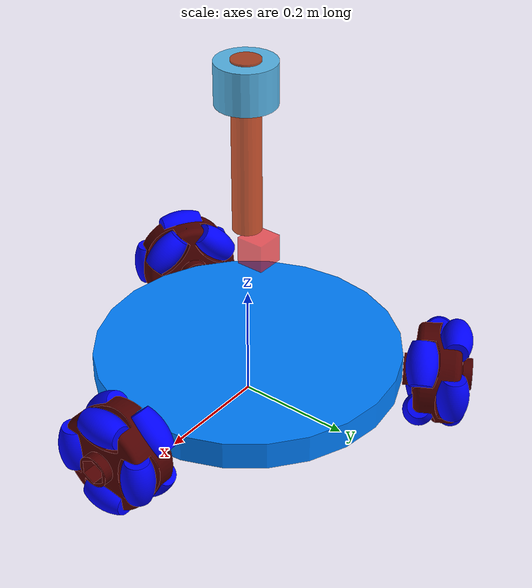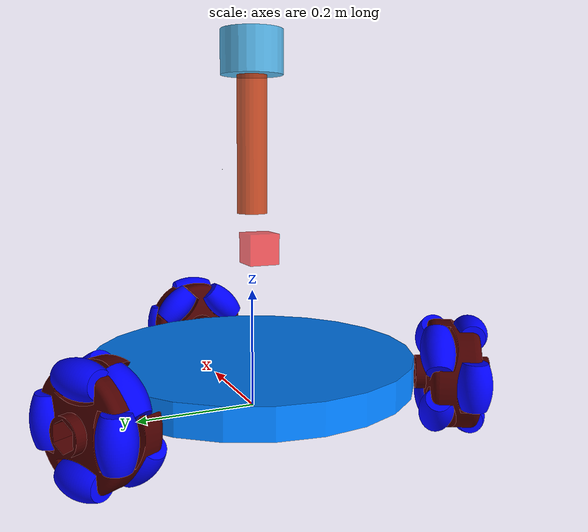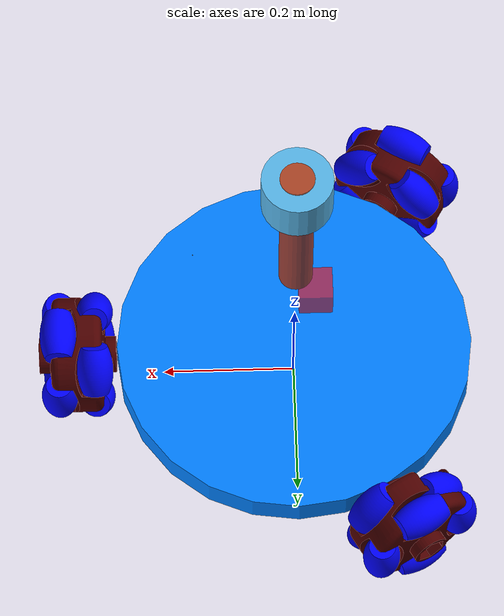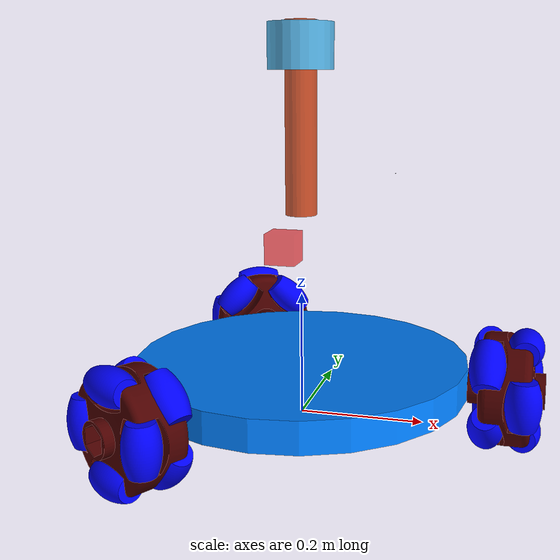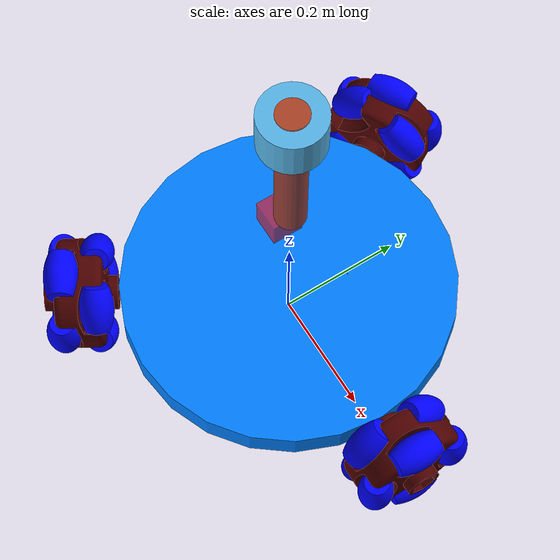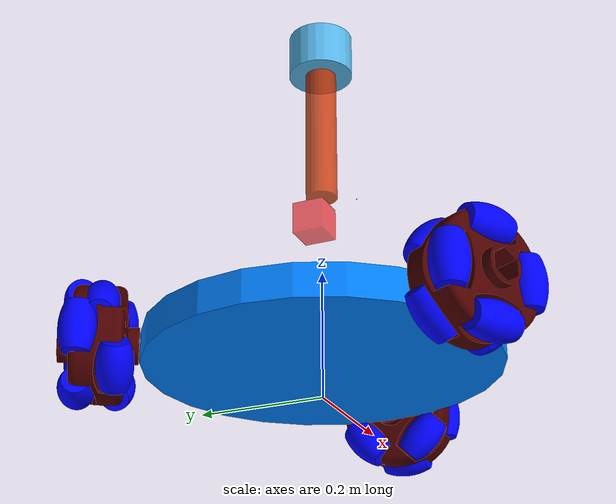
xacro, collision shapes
<?xml version='1.0'?>

<robot name="omni_robot" xmlns:xacro="http://www.ros.org/wiki/xacro">

  	<xacro:include filename="$(find omni_gazebo)/urdf/omni_robot.gazebo" />
	<xacro:property name="scale" value="0.01" />
    <xacro:arg name="gpu" default="false"/>
    <xacro:property name="gpu" value="$(arg gpu)" />
    <xacro:arg name="organize_cloud" default="true"/>
    <xacro:property name="organize_cloud" value="$(arg organize_cloud)" />
	<xacro:property name="base_z_size" value="0.410000" />
    <xacro:include filename="$(find omni_gazebo)/urdf/sensors/inertial.xacro" />
    <xacro:include filename="$(find omni_gazebo)/urdf/sensors/laser_support.xacro" />
    <xacro:include filename="$(find velodyne_description)/urdf/VLP-16.urdf.xacro"/>
    <xacro:VLP-16 parent="support" name="velodyne" topic="/velodyne_points" organize_cloud="${organize_cloud}" hz="10" samples="400" gpu="${gpu}">
          <origin xyz="0 0 ${support_length/4}" rpy="0 0 0" />
    </xacro:VLP-16>

    <xacro:include filename="$(find omni_gazebo)/urdf/sensors/imu.xacro"/>
    <xacro:imu sensor_name="imu" parent_link="base_link">
    <origin rpy="0 0 0" xyz="-0.03 0 ${base_z_size/2}"/>
    </xacro:imu>

  	<link name="base_footprint"></link>

	<joint name="robot_footprint_joint" type="fixed">
		<origin xyz="0 0 0.07" rpy="0 0 0" />
		<parent link="base_footprint" />
		<child link="base_link" />
	</joint>

	<!-- Base Link -->
	<link name="base_link">
		<visual>
			<origin xyz="0 0 0" rpy="0 0 0" />
			<geometry>
				<cylinder radius="0.27" length="0.05"/>
				<!--long,wide,tall-->
			</geometry>

			<material name="blue">
				<color rgba="0 0.5 1 1"/>
			</material>
		</visual>
		<!-- Base collision -->
		<collision>
			<origin xyz="0 0 0" rpy="0 0 0" />
			<geometry>
				<cylinder radius="0.27" length="0.05"/>
				<!--long,wide,tall-->
			</geometry>
		</collision>

		<inertial>
			<mass value="${10.0*scale}"/>
			<inertia ixx="0.5" ixy="0.0" ixz="0.0"
					iyy="0.1391" iyz="0.0" izz="1.6125"/>
		</inertial>

		<visual name="left_bottom_cylinder">
			<origin xyz="0.15 -0.15 0.15" rpy="0 0 0" />
			<geometry>
				<box size="0.02 0.02 0.25" />
			</geometry>
			<material name="white">
				<color rgba="0 0 0 1"/>
			</material>
		</visual>
		<!-- left bottom cylinder collision -->

		<!-- right_bottom cylinder -->
		<visual name="right_bottom_cylinder">
			<origin xyz="0.15 0.15 0.15" rpy="0 0 0" />
			<geometry>
				<box size="0.02 0.02 0.25" />
			</geometry>
			<material name="white"/>
		</visual>

		<!-- between_top_cylinder -->
		<visual name="between_top_cylinder">
			<origin xyz="-0.15 0 0.15" rpy="0 0 0" />
			<geometry>
				<box size="0.02 0.02 0.25" />
			</geometry>
			<material name="white"/>
		</visual>

		<!-- hold_box1 -->
		<visual name="hold_box1">
			<origin xyz="0 0 0.26" rpy="0 0 0" />
			<geometry>
				<cylinder radius="0.25" length="0.05" />
			</geometry>
			<material name="blue"/>
		</visual>

	</link>

	<!-- Orbbec Astra RGBD Camera -->
	<joint name="astra_joint" type="fixed">
		<axis xyz="0 0 0" />
		<origin xyz="0.15 0 0.33" rpy="0 0 0"/>
		<parent link="base_link"/>
		<child link="camera_link"/>
	</joint>

	<link name="camera_link">
		<collision>
			<origin xyz="0 0 0" rpy="0 0 0"/>
			<geometry>
				<box size="0.001 0.001 0.001"/>
			</geometry>
		</collision>

		<visual>
			<origin xyz="-0.01 0 -0.03" rpy="1.5707 0 1.5707"/>
			<geometry>
				<mesh filename="package://omni_gazebo/meshes/astra.dae" scale="0.001 0.001 0.001" />
			</geometry>
		</visual>

		<inertial>
			<mass value="${1e-5*scale}" />
			<origin xyz="0 0 0" rpy="0 0 0"/>
			<inertia ixx="0" ixy="0" ixz="0" iyy="0" iyz="0" izz="0" />
		</inertial>
	</link>

	<joint name="camera_optical_joint" type="fixed">
		<origin xyz="0 0 0" rpy="0 0 0"/>
		<parent link="camera_link"/>
		<child link="camera_rgb_frame"/>
	</joint>

	<link name="camera_rgb_frame">
	</link>

	<joint name="camera_depth_joint" type="fixed">
		<origin xyz="0 0 0" rpy="-1.5707 0 -1.5707"/>
		<parent link="camera_link"/>
		<child link="camera_depth_frame"/>
	</joint>

	<link name="camera_depth_frame">
	</link>

	<!-- rplidar Laser -->

	<!-- IMU -->

	<!-- top_wheel -->
	<joint name="joint_top_wheel" type="fixed">
		<parent link="base_link"/>
		<child link="top_wheel"/>
		<origin xyz="0.33 0 0" rpy="1.570796 0 1.570796" />
		<axis xyz="0 0 1" />
		<joint_properties damping="0.0" friction="0.0"/>
	</joint>

	<transmission name="top_wheel_trans" type="SimpleTransmission">
		<type>transmission_interface/SimpleTransmission</type>
		<actuator name="top_wheel_motor">
			<mechanicalReduction>1</mechanicalReduction>
		</actuator>
		<joint name="joint_top_wheel">
			<hardwareInterface>hardware_interface/VelocityJointInterface</hardwareInterface>
		</joint>
	</transmission>

	<link name="top_wheel">
		<visual>
			<origin xyz="0 0 0" rpy="0 0 0.0" />
			<geometry>
				<mesh filename="package://omni_gazebo/meshes/rim.stl" scale="5 5 5"/>
			</geometry>
			<material name="left_rim_material">
				<color rgba="0.3 0 0 1"/>
			</material>
		</visual>

		<!-- top_wheel collision -->
		<collision>
			<geometry>
				<mesh filename="package://omni_gazebo/meshes/rim.stl" scale="5 5 5"/>
			</geometry>
		</collision>

		<inertial>
			<mass value="${5*scale}"/>
			<inertia ixx="0.070416667" ixy="0" ixz="0"
					iyy="0.0325" iyz="0" izz="0.070416667"/>
		</inertial>
	</link>

	<!-- right_bottom Wheel -->
	<joint name="joint_right_bottom_wheel" type="fixed">
		<parent link="base_link"/>
		<child link="right_bottom_wheel"/>
		<origin xyz="-0.165 0.285788 0" rpy="1.570795 0 -2.61799" />
		<axis xyz="0 0 1" />
		<joint_properties damping="0.0" friction="0.0"/>
	</joint>

	<transmission name="right_bottom_wheel_trans" type="SimpleTransmission">
		<type>transmission_interface/SimpleTransmission</type>
		<actuator name="right_bottom_wheel_motor">
			<mechanicalReduction>1</mechanicalReduction>
		</actuator>
		<joint name="joint_right_bottom_wheel">
			<hardwareInterface>hardware_interface/VelocityJointInterface</hardwareInterface>
		</joint>
	</transmission>

	<link name="right_bottom_wheel">
		<visual>
		<origin xyz="0 0 0" rpy="0 0 0.0" />
		<geometry>
			<mesh filename="package://omni_gazebo/meshes/rim.stl" scale="5 5 5"/>
		</geometry>
		<material name="left_rim_material">
			<color rgba="0.3 0 0 1"/>
		</material>
		</visual>
		<!-- right_bottom_wheel collision -->
		<collision>
			<geometry>
				<mesh filename="package://omni_gazebo/meshes/rim.stl" scale="5 5 5"/>
			</geometry>
		</collision>
		<inertial>
			<mass value="${5*scale}"/>
			<inertia ixx="0.070416667" ixy="0" ixz="0"
					iyy="0.0325" iyz="0" izz="0.070416667"/>
		</inertial>
	</link>

	<!-- right left_bottom Wheel -->
	<joint name="joint_left_bottom_wheel" type="fixed">
		<parent link="base_link"/>
		<child link="left_bottom_wheel"/>
		<origin xyz="-0.165 -0.285788 0" rpy="1.570795 0 -0.52360" />
		<axis xyz="0 0 1" />
		<joint_properties damping="0.0" friction="0.0"/>
	</joint>

	<transmission name="left_bottom_wheel_trans" type="SimpleTransmission">
		<type>transmission_interface/SimpleTransmission</type>
		<actuator name="top_wheel_motor">
			<mechanicalReduction>1</mechanicalReduction>
		</actuator>
		<joint name="joint_left_bottom_wheel">
			<hardwareInterface>hardware_interface/VelocityJointInterface</hardwareInterface>
		</joint>
	</transmission>

	<link name="left_bottom_wheel">
	<visual>
		<origin xyz="0 0 0" rpy="0 0 0.0" />
		<geometry>
			<mesh filename="package://omni_gazebo/meshes/rim.stl" scale="5 5 5"/>
		</geometry>
			<material name="left_rim_material">
				<color rgba="0.3 0 0 1"/>
			</material>
		</visual>

		<!-- left_bottom wheel collision -->
		<collision>
			<geometry>
				<mesh filename="package://omni_gazebo/meshes/rim.stl" scale="5 5 5"/>
			</geometry>
		</collision>
		<inertial>
			<mass value="${5*scale}"/>
			<inertia ixx="0.070416667" ixy="0" ixz="0"
					iyy="0.0325" iyz="0" izz="0.070416667"/>
		</inertial>
	</link>

	<!-- Roller bottem left wheel -->
	<!-- Roller bottem left wheel -->
	<link name="bottem_left_roller_e_link">
		<visual>
			<origin xyz="0 0 0" rpy="0 0 0"/>
			<geometry>
				<mesh filename="package://omni_gazebo/meshes/roller.stl" scale="5 5 5"/>
			</geometry>
			<material name="bottem_left_roller_e_material">
				<color rgba="0.0 0.0 1.0 1"/>
			</material>
		</visual>
		<inertial>
			<mass value="${0.00179*scale}"/>
			<inertia
				ixx="0.000005"
				ixy="0"
				ixz="0"
				iyy="0.000005"
				iyz="0"
				izz="0.000003"
			/>
		</inertial>

		<collision>
			<geometry>
				<mesh filename="package://omni_gazebo/meshes/roller.stl" scale="5 5 5"/>
			</geometry>
		</collision>
	</link>

	<joint
		name="bottem_left_roller_e_joint"
		type="fixed"
	>

		<parent link="left_bottom_wheel"/>
		<child link="bottem_left_roller_e_link"/>
		<axis xyz="0 0 1"/>
		<origin
			xyz="0.06775 0 0.0275"
			rpy="-1.570796326794896 0 0"
		/>

	</joint>
	<link name="bottem_left_roller_ne_link">

		<inertial>

			<mass value="${0.00179*scale}"/>
			<inertia
				ixx="0.000005"
				ixy="0"
				ixz="0"
				iyy="0.000005"
				iyz="0"
				izz="0.000003"
			/>

		</inertial>
		<visual>

			<geometry>

				<mesh filename="package://omni_gazebo/meshes/roller.stl" scale="5 5 5"/>

			</geometry>
			<material name="bottem_left_roller_e_material">

				<color rgba="0.0 0.0 1.0 1"/>

			</material>

		</visual>
		<collision>

			<geometry>

				<mesh filename="package://omni_gazebo/meshes/roller.stl" scale="5 5 5"/>

			</geometry>

		</collision>

	</link>
	<joint
		name="bottem_left_roller_ne_joint"
		type="fixed"
	>

		<parent link="left_bottom_wheel"/>
		<child link="bottem_left_roller_ne_link"/>
		<axis xyz="0 0 1"/>
		<origin
			xyz="0.047906484 0.047906484 -0.0275"
			rpy="-1.570796326794896 0 0.7853981633974483"
		/>

	</joint>
	<link name="bottem_left_roller_n_link">

		<inertial>

			<mass value="${0.00179*scale}"/>
			<inertia
				ixx="0.000005"
				ixy="0"
				ixz="0"
				iyy="0.000005"
				iyz="0"
				izz="0.000003"
			/>

		</inertial>
		<visual>

			<geometry>

				<mesh filename="package://omni_gazebo/meshes/roller.stl" scale="5 5 5"/>

			</geometry>
			<material name="bottem_left_roller_n_material">

				<color rgba="0.0 0.0 1.0 1"/>

			</material>

		</visual>
		<collision>

			<geometry>

				<mesh filename="package://omni_gazebo/meshes/roller.stl" scale="5 5 5"/>

			</geometry>

		</collision>

	</link>
	<joint name="bottem_left_roller_n_joint" type="fixed">
		<parent link="left_bottom_wheel"/>
		<child link="bottem_left_roller_n_link"/>
		<axis xyz="0 0 1"/>
		<origin
			xyz="0 0.06775 0.0275"
			rpy="-1.570796326794896 0 1.570796326794896"
		/>
	</joint>

	<link name="bottem_left_roller_nw_link">
		<inertial>
			<mass value="${0.00179*scale}"/>
			<inertia
				ixx="0.000005"
				ixy="0"
				ixz="0"
				iyy="0.000005"
				iyz="0"
				izz="0.000003"
			/>
		</inertial>
		<visual>
			<geometry>
				<mesh filename="package://omni_gazebo/meshes/roller.stl" scale="5 5 5"/>
			</geometry>
			<material name="bottem_left_roller_nw_material">
				<color rgba="0.0 0.0 1.0 1"/>
			</material>
		</visual>
		<collision>
			<geometry>
				<mesh filename="package://omni_gazebo/meshes/roller.stl" scale="5 5 5"/>
			</geometry>
		</collision>
	</link>

	<joint name="bottem_left_roller_nw_joint" type="fixed">
		<parent link="left_bottom_wheel"/>
		<child link="bottem_left_roller_nw_link"/>
		<axis xyz="0 0 1"/>
		<origin
			xyz="-0.047906484 0.047906484 -0.0275"
			rpy="-1.570796326794896 0 2.356194490192345"
		/>
	</joint>

	<link name="bottem_left_roller_w_link">
		<inertial>
			<mass value="${0.00179*scale}"/>
			<inertia
				ixx="0.000005"
				ixy="0"
				ixz="0"
				iyy="0.000005"
				iyz="0"
				izz="0.000003"
			/>
		</inertial>
		<visual>
			<geometry>
				<mesh filename="package://omni_gazebo/meshes/roller.stl" scale="5 5 5"/>
			</geometry>
			<material name="bottem_left_roller_w_material">
				<color rgba="0.0 0.0 1.0 1"/>
			</material>
		</visual>
		<collision>
			<geometry>
				<mesh filename="package://omni_gazebo/meshes/roller.stl" scale="5 5 5"/>
			</geometry>
		</collision>
	</link>

	<joint name="bottem_left_roller_w_joint" type="fixed">
		<parent link="left_bottom_wheel"/>
		<child link="bottem_left_roller_w_link"/>
		<axis xyz="0 0 1"/>
		<origin
			xyz="-0.06775 0 0.0275"
			rpy="-1.570796326794896 0 3.141592653589793"
		/>
	</joint>

	<link name="bottem_left_roller_sw_link">
		<inertial>
			<mass value="${0.00179*scale}"/>
			<inertia
				ixx="0.000005"
				ixy="0"
				ixz="0"
				iyy="0.000005"
				iyz="0"
				izz="0.000003"
			/>
		</inertial>
		<visual>
			<geometry>
				<mesh filename="package://omni_gazebo/meshes/roller.stl" scale="5 5 5"/>
			</geometry>
			<material name="bottem_left_roller_sw_material">
				<color rgba="0.0 0.0 1.0 1"/>
			</material>
		</visual>
		<collision>
			<geometry>
				<mesh filename="package://omni_gazebo/meshes/roller.stl" scale="5 5 5"/>
			</geometry>
		</collision>
	</link>

	<joint name="bottem_left_roller_sw_joint" type="fixed">
		<parent link="left_bottom_wheel"/>
		<child link="bottem_left_roller_sw_link"/>
		<axis xyz="0 0 1"/>
		<origin
			xyz="-0.047906484 -0.047906484 -0.0275"
			rpy="-1.570796326794896 0 -2.356194490192345"
		/>
	</joint>

	<link name="bottem_left_roller_s_link">
		<inertial>
			<mass value="${0.00179*scale}"/>
			<inertia
				ixx="0.000005"
				ixy="0"
				ixz="0"
				iyy="0.000005"
				iyz="0"
				izz="0.000003"
			/>
		</inertial>
		<visual>
			<geometry>
				<mesh filename="package://omni_gazebo/meshes/roller.stl" scale="5 5 5"/>
			</geometry>
			<material name="bottem_left_roller_s_material">
				<color rgba="0.0 0.0 1.0 1"/>
			</material>
		</visual>
		<collision>
			<geometry>
				<mesh filename="package://omni_gazebo/meshes/roller.stl" scale="5 5 5"/>
			</geometry>
		</collision>
	</link>

	<joint name="bottem_left_roller_s_joint" type="fixed">
		<parent link="left_bottom_wheel"/>
		<child link="bottem_left_roller_s_link"/>
		<axis xyz="0 0 1"/>
		<origin
			xyz="0 -0.06775 0.0275"
			rpy="-1.570796326794896 0 -1.570796326794896"
		/>
	</joint>

	<link name="bottem_left_roller_se_link">
		<inertial>
			<mass value="${0.00179*scale}"/>
			<inertia
				ixx="0.000005"
				ixy="0"
				ixz="0"
				iyy="0.000005"
				iyz="0"
				izz="0.000003"
			/>
		</inertial>
		<visual>
			<geometry>
				<mesh filename="package://omni_gazebo/meshes/roller.stl" scale="5 5 5"/>
			</geometry>
			<material name="bottem_left_roller_se_material">
				<color rgba="0.0 0.0 1.0 1"/>
			</material>
		</visual>
		<collision>
			<geometry>
				<mesh filename="package://omni_gazebo/meshes/roller.stl" scale="5 5 5"/>
			</geometry>
		</collision>
	</link>

	<joint name="bottem_left_roller_se_joint" type="fixed">
		<parent link="left_bottom_wheel"/>
		<child link="bottem_left_roller_se_link"/>
		<axis xyz="0 0 1"/>
		<origin
			xyz="0.047906484 -0.047906484 -0.0275"
			rpy="-1.570796326794896 0 -0.7853981633974483"
		/>
	</joint>

	<link name="bottem_right_roller_e_link">
		<visual>
			<origin xyz="0 0 0"	rpy="0 0 0"/>
			<geometry>
				<mesh filename="package://omni_gazebo/meshes/roller.stl" scale="5 5 5"/>
			</geometry>
			<material name="bottem_right_roller_e_material">
				<color rgba="0.0 0.0 1.0 1"/>
			</material>
		</visual>
		<inertial>
			<mass value="${0.00179*scale}"/>
			<inertia
				ixx="0.000005"
				ixy="0"
				ixz="0"
				iyy="0.000005"
				iyz="0"
				izz="0.000003"
			/>
		</inertial>
		<collision>
			<geometry>
				<mesh filename="package://omni_gazebo/meshes/roller.stl" scale="5 5 5"/>
			</geometry>
		</collision>
	</link>
	<joint name="bottem_right_roller_e_joint" type="fixed">
		<parent link="right_bottom_wheel"/>
		<child link="bottem_right_roller_e_link"/>
		<axis xyz="0 0 1"/>
		<origin
			xyz="0.06775 0 0.0275"
			rpy="-1.570796326794896 0 0"
		/>
	</joint>

	<link name="bottem_right_roller_ne_link">
		<inertial>
			<mass value="${0.00179*scale}"/>
			<inertia
				ixx="0.000005"
				ixy="0"
				ixz="0"
				iyy="0.000005"
				iyz="0"
				izz="0.000003"
			/>
		</inertial>
		<visual>
			<geometry>
				<mesh filename="package://omni_gazebo/meshes/roller.stl" scale="5 5 5"/>
			</geometry>
			<material name="bottem_right_roller_e_material">
				<color rgba="0.0 0.0 1.0 1"/>
			</material>
		</visual>
		<collision>
			<geometry>
				<mesh filename="package://omni_gazebo/meshes/roller.stl" scale="5 5 5"/>
			</geometry>
		</collision>
	</link>

	<joint name="bottem_right_roller_ne_joint" type="fixed">
		<parent link="right_bottom_wheel"/>
		<child link="bottem_right_roller_ne_link"/>
		<axis xyz="0 0 1"/>
		<origin
			xyz="0.047906484 0.047906484 -0.00275"
			rpy="-1.570796326794896 0 0.7853981633974483"
		/>
	</joint>

	<link name="bottem_right_roller_n_link">
		<inertial>
			<mass value="${0.00179*scale}"/>
			<inertia
				ixx="0.000005"
				ixy="0"
				ixz="0"
				iyy="0.000005"
				iyz="0"
				izz="0.000003"
			/>
		</inertial>
		<visual>
			<geometry>
				<mesh filename="package://omni_gazebo/meshes/roller.stl" scale="5 5 5"/>
			</geometry>
			<material name="bottem_right_roller_n_material">
				<color rgba="0.0 0.0 1.0 1"/>
			</material>
		</visual>
		<collision>
			<geometry>
				<mesh filename="package://omni_gazebo/meshes/roller.stl" scale="5 5 5"/>
			</geometry>
		</collision>
	</link>

	<joint name="bottem_right_roller_n_joint" type="fixed">
		<parent link="right_bottom_wheel"/>
		<child link="bottem_right_roller_n_link"/>
		<axis xyz="0 0 1"/>
		<origin
			xyz="0 0.06775 0.0275"
			rpy="-1.570796326794896 0 1.570796326794896"
		/>
	</joint>

	<link name="bottem_right_roller_nw_link">
		<inertial>
			<mass value="${0.00179*scale}"/>
			<inertia
				ixx="0.000005"
				ixy="0"
				ixz="0"
				iyy="0.000005"
				iyz="0"
				izz="0.000003"
			/>
		</inertial>
		<visual>
			<geometry>
				<mesh filename="package://omni_gazebo/meshes/roller.stl" scale="5 5 5"/>
			</geometry>
			<material name="bottem_right_roller_nw_material">
				<color rgba="0.0 0.0 1.0 1"/>
			</material>
		</visual>
		<collision>
			<geometry>
				<mesh filename="package://omni_gazebo/meshes/roller.stl" scale="5 5 5"/>
			</geometry>
		</collision>
	</link>

	<joint name="bottem_right_roller_nw_joint" type="fixed">
		<parent link="right_bottom_wheel"/>
		<child link="bottem_right_roller_nw_link"/>
		<axis xyz="0 0 1"/>
		<origin
			xyz="-0.047906484 0.047906484 -0.0275"
			rpy="-1.570796326794896 0 2.356194490192345"
		/>
	</joint>

	<link name="bottem_right_roller_w_link">
		<inertial>
			<mass value="${0.00179*scale}"/>
			<inertia
				ixx="0.000005"
				ixy="0"
				ixz="0"
				iyy="0.000005"
				iyz="0"
				izz="0.000003"
			/>
		</inertial>
		<visual>
			<geometry>
				<mesh filename="package://omni_gazebo/meshes/roller.stl" scale="5 5 5"/>
			</geometry>
			<material name="bottem_right_roller_w_material">
				<color rgba="0.0 0.0 1.0 1"/>
			</material>
		</visual>
		<collision>
			<geometry>
				<mesh filename="package://omni_gazebo/meshes/roller.stl" scale="5 5 5"/>
			</geometry>
		</collision>
	</link>

	<joint name="bottem_right_roller_w_joint" type="fixed">
		<parent link="right_bottom_wheel"/>
		<child link="bottem_right_roller_w_link"/>
		<axis xyz="0 0 1"/>
		<origin
			xyz="-0.06775 0 0.0275"
			rpy="-1.570796326794896 0 3.141592653589793"
		/>
	</joint>

	<link name="bottem_right_roller_sw_link">
		<inertial>
			<mass value="${0.00179*scale}"/>
			<inertia
				ixx="0.000005"
				ixy="0"
				ixz="0"
				iyy="0.000005"
				iyz="0"
				izz="0.000003"
			/>
		</inertial>
		<visual>
			<geometry>
				<mesh filename="package://omni_gazebo/meshes/roller.stl" scale="5 5 5"/>
			</geometry>
			<material name="bottem_right_roller_sw_material">
				<color rgba="0.0 0.0 1.0 1"/>
			</material>
		</visual>
		<collision>
			<geometry>
				<mesh filename="package://omni_gazebo/meshes/roller.stl" scale="5 5 5"/>
			</geometry>
		</collision>
	</link>

	<joint name="bottem_right_roller_sw_joint" type="fixed">
		<parent link="right_bottom_wheel"/>
		<child link="bottem_right_roller_sw_link"/>
		<axis xyz="0 0 1"/>
		<origin
			xyz="-0.047906484 -0.047906484 -0.0275"
			rpy="-1.570796326794896 0 -2.356194490192345"
		/>
	</joint>

	<link name="bottem_right_roller_s_link">
		<inertial>
			<mass value="${0.00179*scale}"/>
			<inertia
				ixx="0.000005"
				ixy="0"
				ixz="0"
				iyy="0.000005"
				iyz="0"
				izz="0.000003"
			/>
		</inertial>
		<visual>
			<geometry>
				<mesh filename="package://omni_gazebo/meshes/roller.stl" scale="5 5 5"/>
			</geometry>
			<material name="bottem_right_roller_s_material">
				<color rgba="0.0 0.0 1.0 1"/>
			</material>
		</visual>
		<collision>
			<geometry>
				<mesh filename="package://omni_gazebo/meshes/roller.stl" scale="5 5 5"/>
			</geometry>
		</collision>
	</link>

	<joint name="bottem_right_roller_s_joint" type="fixed">
		<parent link="right_bottom_wheel"/>
		<child link="bottem_right_roller_s_link"/>
		<axis xyz="0 0 1"/>
		<origin
			xyz="0 -0.06775 0.0275"
			rpy="-1.570796326794896 0 -1.570796326794896"
		/>
	</joint>

	<link name="bottem_right_roller_se_link">
		<inertial>
			<mass value="${0.00179*scale}"/>
			<inertia
				ixx="0.000005"
				ixy="0"
				ixz="0"
				iyy="0.000005"
				iyz="0"
				izz="0.000003"
			/>
		</inertial>
		<visual>
			<geometry>
				<mesh filename="package://omni_gazebo/meshes/roller.stl" scale="5 5 5"/>
			</geometry>
			<material name="bottem_right_roller_se_material">
				<color rgba="0.0 0.0 1.0 1"/>
			</material>
		</visual>
		<collision>
			<geometry>
				<mesh filename="package://omni_gazebo/meshes/roller.stl" scale="5 5 5"/>
			</geometry>
		</collision>
	</link>

	<joint name="bottem_right_roller_se_joint" type="fixed">
		<parent link="right_bottom_wheel"/>
		<child link="bottem_right_roller_se_link"/>
		<axis xyz="0 0 1"/>
		<origin
			xyz="0.047906484 -0.047906484 -0.0275"
			rpy="-1.570796326794896 0 -0.7853981633974483"
		/>
	</joint>

	<link name="right_left_roller_e_link">
		<visual>
			<origin	xyz="0 0 0"	rpy="0 0 0"/>
			<geometry>
				<mesh filename="package://omni_gazebo/meshes/roller.stl" scale="5 5 5"/>
			</geometry>
			<material name="right_left_roller_e_material">
				<color rgba="0.0 0.0 1.0 1"/>
			</material>
		</visual>
		<inertial>
			<mass value="${0.00179*scale}"/>
			<inertia
				ixx="0.000005"
				ixy="0"
				ixz="0"
				iyy="0.000005"
				iyz="0"
				izz="0.000003"
			/>
		</inertial>
		<collision>
			<geometry>
				<mesh filename="package://omni_gazebo/meshes/roller.stl" scale="5 5 5"/>
			</geometry>
		</collision>
	</link>

	<joint name="right_left_roller_e_joint" type="fixed">
		<parent link="top_wheel"/>
		<child link="right_left_roller_e_link"/>
		<axis xyz="0 0 1"/>
		<origin
			xyz="0.06775 0 0.0275"
			rpy="-1.570796326794896 0 0"
		/>
	</joint>

	<link name="right_left_roller_ne_link">
		<inertial>
			<mass value="${0.00179*scale}"/>
			<inertia
				ixx="0.000005"
				ixy="0"
				ixz="0"
				iyy="0.000005"
				iyz="0"
				izz="0.000003"
			/>
		</inertial>
		<visual>
			<geometry>
				<mesh filename="package://omni_gazebo/meshes/roller.stl" scale="5 5 5"/>
			</geometry>
			<material name="right_left_roller_e_material">
				<color rgba="0.0 0.0 1.0 1"/>
			</material>
		</visual>
		<collision>
			<geometry>
				<mesh filename="package://omni_gazebo/meshes/roller.stl" scale="5 5 5"/>
			</geometry>
		</collision>
	</link>

	<joint name="right_left_roller_ne_joint" type="fixed">
		<parent link="top_wheel"/>
		<child link="right_left_roller_ne_link"/>
		<axis xyz="0 0 1"/>
		<origin
			xyz="0.047906484 0.047906484 -0.0275"
			rpy="-1.570796326794896 0 0.7853981633974483"
		/>
	</joint>

	<link name="right_left_roller_n_link">
		<inertial>
			<mass value="${0.00179*scale}"/>
			<inertia
				ixx="0.000005"
				ixy="0"
				ixz="0"
				iyy="0.000005"
				iyz="0"
				izz="0.000003"
			/>
		</inertial>
		<visual>
			<geometry>
				<mesh filename="package://omni_gazebo/meshes/roller.stl" scale="5 5 5"/>
			</geometry>
			<material name="right_left_roller_n_material">
				<color rgba="0.0 0.0 1.0 1"/>
			</material>
		</visual>
		<collision>
			<geometry>
				<mesh filename="package://omni_gazebo/meshes/roller.stl" scale="5 5 5"/>
			</geometry>
		</collision>
	</link>

	<joint name="right_left_roller_n_joint" type="fixed">
		<parent link="top_wheel"/>
		<child link="right_left_roller_n_link"/>
		<axis xyz="0 0 1"/>
		<origin
			xyz="0 0.06775 0.0275"
			rpy="-1.570796326794896 0 1.570796326794896"
		/>
	</joint>

	<link name="right_left_roller_nw_link">
		<inertial>
			<mass value="${0.00179*scale}"/>
			<inertia
				ixx="0.000005"
				ixy="0"
				ixz="0"
				iyy="0.000005"
				iyz="0"
				izz="0.000003"
			/>
		</inertial>
		<visual>
			<geometry>
				<mesh filename="package://omni_gazebo/meshes/roller.stl" scale="5 5 5"/>
			</geometry>
			<material name="right_left_roller_nw_material">
				<color rgba="0.0 0.0 1.0 1"/>
			</material>
		</visual>
		<collision>
			<geometry>
				<mesh filename="package://omni_gazebo/meshes/roller.stl" scale="5 5 5"/>
			</geometry>
		</collision>
	</link>

	<joint name="right_left_roller_nw_joint" type="fixed">
		<parent link="top_wheel"/>
		<child link="right_left_roller_nw_link"/>
		<axis xyz="0 0 1"/>
		<origin
			xyz="-0.047906484 0.047906484 -0.0275"
			rpy="-1.570796326794896 0 2.356194490192345"
		/>
	</joint>

	<link name="right_left_roller_w_link">
		<inertial>
			<mass value="${0.00179*scale}"/>
			<inertia
				ixx="0.000005"
				ixy="0"
				ixz="0"
				iyy="0.000005"
				iyz="0"
				izz="0.000003"
			/>
		</inertial>
		<visual>
			<geometry>
				<mesh filename="package://omni_gazebo/meshes/roller.stl" scale="5 5 5"/>
			</geometry>
			<material name="right_left_roller_w_material">
				<color rgba="0.0 0.0 1.0 1"/>
			</material>
		</visual>
		<collision>
			<geometry>
				<mesh filename="package://omni_gazebo/meshes/roller.stl" scale="5 5 5"/>
			</geometry>
		</collision>
	</link>

	<joint name="right_left_roller_w_joint" type="fixed">
		<parent link="top_wheel"/>
		<child link="right_left_roller_w_link"/>
		<axis xyz="0 0 1"/>
		<origin
			xyz="-0.06775 0 0.0275"
			rpy="-1.570796326794896 0 3.141592653589793"
		/>
	</joint>

	<link name="right_left_roller_sw_link">
		<inertial>
			<mass value="${0.00179*scale}"/>
			<inertia
				ixx="0.000005"
				ixy="0"
				ixz="0"
				iyy="0.000005"
				iyz="0"
				izz="0.000003"
			/>
		</inertial>
		<visual>
			<geometry>
				<mesh filename="package://omni_gazebo/meshes/roller.stl" scale="5 5 5"/>
			</geometry>
			<material name="right_left_roller_sw_material">
				<color rgba="0.0 0.0 1.0 1"/>
			</material>
		</visual>
		<collision>
			<geometry>
				<mesh filename="package://omni_gazebo/meshes/roller.stl" scale="5 5 5"/>
			</geometry>
		</collision>
	</link>

	<joint name="right_left_roller_sw_joint" type="fixed">
		<parent link="top_wheel"/>
		<child link="right_left_roller_sw_link"/>
		<axis xyz="0 0 1"/>
		<origin
			xyz="-0.047906484 -0.047906484 -0.0275"
			rpy="-1.570796326794896 0 -2.356194490192345"
		/>
	</joint>

	<link name="right_left_roller_s_link">
		<inertial>
			<mass value="${0.00179*scale}"/>
			<inertia
				ixx="0.000005"
				ixy="0"
				ixz="0"
				iyy="0.000005"
				iyz="0"
				izz="0.000003"
			/>
		</inertial>
		<visual>
			<geometry>
				<mesh filename="package://omni_gazebo/meshes/roller.stl" scale="5 5 5"/>
			</geometry>
			<material name="right_left_roller_s_material">
				<color rgba="0.0 0.0 1.0 1"/>
			</material>
		</visual>
		<collision>
			<geometry>
				<mesh filename="package://omni_gazebo/meshes/roller.stl" scale="5 5 5"/>
			</geometry>
		</collision>
	</link>

	<joint name="right_left_roller_s_joint" type="fixed">
		<parent link="top_wheel"/>
		<child link="right_left_roller_s_link"/>
		<axis xyz="0 0 1"/>
		<origin
			xyz="0 -0.06775 0.0275"
			rpy="-1.570796326794896 0 -1.570796326794896"
		/>
	</joint>

	<link name="right_left_roller_se_link">
		<inertial>
			<mass value="${0.00179*scale}"/>
			<inertia
				ixx="0.000005"
				ixy="0"
				ixz="0"
				iyy="0.000005"
				iyz="0"
				izz="0.000003"
			/>
		</inertial>
		<visual>
			<geometry>
				<mesh filename="package://omni_gazebo/meshes/roller.stl" scale="5 5 5"/>
			</geometry>
			<material name="right_left_roller_se_material">
				<color rgba="0.0 0.0 1.0 1"/>
			</material>
		</visual>
		<collision>
			<geometry>
				<mesh filename="package://omni_gazebo/meshes/roller.stl" scale="5 5 5"/>
			</geometry>
		</collision>
	</link>

	<joint name="right_left_roller_se_joint" type="fixed">
		<parent link="top_wheel"/>
		<child link="right_left_roller_se_link"/>
		<axis xyz="0 0 1"/>
		<origin
			xyz="0.047906484 -0.047906484 -0.0275"
			rpy="-1.570796326794896 0 -0.7853981633974483"
		/>
	</joint>
</robot>

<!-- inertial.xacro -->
<robot name="base" xmlns:xacro="http://wiki.ros.org/xacro">
    <!-- Macro for inertia matrix -->
    <xacro:macro name="sphere_inertial_matrix" params="m r">
        <inertial>
            <mass value="${m}" />
            <inertia ixx="${2*m*r*r/5}" ixy="0" ixz="0"
                iyy="${2*m*r*r/5}" iyz="0"
                izz="${2*m*r*r/5}" />
        </inertial>
    </xacro:macro>

    <xacro:macro name="cylinder_inertial_matrix" params="m r h">
        <inertial>
            <mass value="${m}" />
            <inertia ixx="${m*(3*r*r+h*h)/12}" ixy = "0" ixz = "0"
                iyy="${m*(3*r*r+h*h)/12}" iyz = "0"
                izz="${m*r*r/2}" />
        </inertial>
    </xacro:macro>

    <xacro:macro name="Box_inertial_matrix" params="m l w h">
       <inertial>
               <mass value="${m}" />
               <inertia ixx="${m*(h*h + l*l)/12}" ixy = "0" ixz = "0"
                   iyy="${m*(w*w + l*l)/12}" iyz= "0"
                   izz="${m*(w*w + h*h)/12}" />
       </inertial>
   </xacro:macro>
</robot>

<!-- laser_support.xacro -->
<robot name="laser_support" xmlns:xacro="http://wiki.ros.org/xacro">

    <xacro:property name="support_length" value="0.30" />
    <xacro:property name="support_radius" value="0.025" />
    <xacro:property name="support_x_size" value="0" />
    <xacro:property name="support_y_size" value="0.0" />
    <xacro:property name="support_z_size" value="${base_z_size}" />

    <xacro:property name="support_m" value="0.02" />

    <link name="support">
        <visual>
            <geometry>
                <cylinder radius="${support_radius}" length="${support_length}" />
            </geometry>
            <origin xyz="0 0 0" rpy="0.0 0.0 0.0" />
            <material name="red">
                <color rgba="0.8 0.2 0.0 0.8" />
            </material>
        </visual>
        <collision>
            <geometry>
                <cylinder radius="${support_radius}" length="${support_length}" />
            </geometry>
            <origin xyz="0 0 0" rpy="0.0 0.0 0.0" />
        </collision>
        <xacro:cylinder_inertial_matrix m="${support_m}" r="${support_radius}" h="${support_length}" />
    </link>

    <joint name="support2base_link" type="fixed">
        <parent link="base_link" />
        <child link="support" />
        <origin xyz="${support_x_size} ${support_y_size} ${support_z_size}" />
    </joint>
    <gazebo reference="support">
        <material>Gazebo/White</material>
    </gazebo>
</robot>

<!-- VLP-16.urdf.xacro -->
<robot xmlns:xacro="http://www.ros.org/wiki/xacro" name="VLP-16">
  <xacro:property name="M_PI" value="3.1415926535897931" />
  <xacro:macro name="VLP-16" params="*origin parent:=base_link name:=velodyne topic:=/velodyne_points organize_cloud:=false hz:=10 lasers:=16 samples:=500 collision_range:=0.3 min_range:=0.2 max_range:=50.0 noise:=0.0001 min_angle:=-${M_PI} max_angle:=${M_PI} gpu:=false">

    <joint name="${name}_base_mount_joint" type="fixed">
      <xacro:insert_block name="origin" />
      <parent link="${parent}"/>
      <child link="${name}_base_link"/>
    </joint>

    <link name="${name}_base_link">
      <inertial>
        <mass value="0.83"/>
        <origin xyz="0 0 0.03585"/>
        <inertia ixx="${(0.83 * (3.0*0.0516*0.0516 + 0.0717*0.0717)) / 12.0}" ixy="0" ixz="0"
          iyy="${(0.83 * (3.0*0.0516*0.0516 + 0.0717*0.0717)) / 12.0}" iyz="0"
          izz="${0.5 * 0.83 * (0.0516*0.0516)}"/>
      </inertial>
      <visual>
        <geometry>
          <mesh filename="package://velodyne_description/meshes/VLP16_base_1.dae" />
        </geometry>
      </visual>
      <visual>
        <geometry>
          <mesh filename="package://velodyne_description/meshes/VLP16_base_2.dae" />
        </geometry>
      </visual>
      <collision>
        <origin rpy="0 0 0" xyz="0 0 0.03585"/>
        <geometry>
          <cylinder radius="0.0516" length="0.0717"/>
        </geometry>
      </collision>
    </link>

    <joint name="${name}_base_scan_joint" type="fixed" >
      <origin xyz="0 0 0.0377" rpy="0 0 0" />
      <parent link="${name}_base_link" />
      <child link="${name}"/>
    </joint>

    <link name="${name}">
      <inertial>
        <mass value="0.01"/>
        <origin xyz="0 0 0"/>
        <inertia ixx="1e-7" ixy="0" ixz="0" iyy="1e-7" iyz="0" izz="1e-7"/>
      </inertial>
      <visual>
        <origin xyz="0 0 -0.0377" />
        <geometry>
          <mesh filename="package://velodyne_description/meshes/VLP16_scan.dae" />
        </geometry>
      </visual>
    </link>

    <!-- Gazebo requires the velodyne_gazebo_plugins package -->
    <gazebo reference="${name}">
      <xacro:if value="${gpu}">
        <sensor type="gpu_ray" name="${name}-VLP16">
          <pose>0 0 0 0 0 0</pose>
          <visualize>false</visualize>
          <update_rate>${hz}</update_rate>
          <ray>
            <scan>
              <horizontal>
                <samples>${samples}</samples>
                <resolution>1</resolution>
                <min_angle>${min_angle}</min_angle>
                <max_angle>${max_angle}</max_angle>
              </horizontal>
              <vertical>
                <samples>${lasers}</samples>
                <resolution>1</resolution>
                <min_angle>-1</min_angle>
                <max_angle>1.00</max_angle>
              </vertical>
            </scan>
            <range>
              <min>${collision_range}</min>
              <max>${max_range+1}</max>
              <resolution>0.001</resolution>
            </range>
            <noise>
              <type>gaussian</type>
              <mean>0.00</mean>
              <stddev>0.0001</stddev>
            </noise>
          </ray>
          <plugin name="gazebo_ros_laser_controller" filename="libgazebo_ros_velodyne_gpu_laser.so">
            <topicName>${topic}</topicName>
            <frameName>${name}</frameName>
            <organize_cloud>${organize_cloud}</organize_cloud>
            <min_range>${min_range}</min_range>
            <max_range>${max_range}</max_range>
            <gaussianNoise>${noise}</gaussianNoise>
          </plugin>
        </sensor>
      </xacro:if>
      <xacro:unless value="${gpu}">
        <sensor type="ray" name="${name}-VLP16">
          <pose>0 0 0 0 0 0</pose>
          <visualize>false</visualize>
          <update_rate>${hz}</update_rate>
          <ray>
            <scan>
              <horizontal>
                <samples>${samples}</samples>
                <resolution>1</resolution>
                <min_angle>${min_angle}</min_angle>
                <max_angle>${max_angle}</max_angle>
              </horizontal>
              <vertical>
                <samples>${lasers}</samples>
                <resolution>1</resolution>
                <min_angle>-1</min_angle>
                <max_angle>1.00</max_angle>
              </vertical>
            </scan>
            <range>
              <min>${collision_range}</min>
              <max>${max_range+1}</max>
              <resolution>0.001</resolution>
            </range>
            <noise>
              <type>gaussian</type>
              <mean>0.0</mean>
              <stddev>0.0001</stddev>
            </noise>
          </ray>
          <plugin name="gazebo_ros_laser_controller" filename="libgazebo_ros_velodyne_laser.so">
            <topicName>${topic}</topicName>
            <frameName>${name}</frameName>
            <organize_cloud>${organize_cloud}</organize_cloud>
            <min_range>${min_range}</min_range>
            <max_range>${max_range}</max_range>
            <gaussianNoise>${noise}</gaussianNoise>
          </plugin>
        </sensor>
      </xacro:unless>
    </gazebo>

  </xacro:macro>
</robot>

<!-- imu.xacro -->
<robot xmlns:xacro="http://wiki.ros.org/xacro">

    <xacro:macro name="imu" params="sensor_name parent_link *origin">

        <xacro:property name="imu_offset_x" value="0" />
        <xacro:property name="imu_offset_y" value="0" />
        <xacro:property name="imu_offset_z" value="0.2" />
        <xacro:property name="imu_size"     value="0.05" />
        <xacro:property name="imu_m" value="0.01" />
        <!-- imu -->
        <joint name="imutobase" type="fixed">
            <xacro:insert_block name="origin" />
            <parent link="${parent_link}"/>
            <child link="imu_base"/>
        </joint>

        <link name="imu_base">
            <visual>
                <origin rpy="0 0 0" xyz="0 0 0" />
                <geometry>
                        <box size="${imu_size} ${imu_size} ${imu_size}"/>
                </geometry>
                <material name= "black" >
                <color rgba="1.0 0.0 0.0 0.6" />
                </material>
            </visual>
            <collision>
                <geometry>
                    <box size="${imu_size} ${imu_size} ${imu_size}" />
                </geometry>
                <origin xyz="0.0 0.0 0" rpy="0.0 0.0 0.0" />
            </collision>
            <xacro:Box_inertial_matrix m = "${imu_m}" l = "${imu_size}" w = "${imu_size}" h = "${imu_size}"/>
        </link>

        <gazebo reference="imu_base">
            <material>Gazebo/Bule</material>
            <gravity>true</gravity>
            <sensor name="imu_sensor" type="imu">
            <always_on>true</always_on>
            <update_rate>100</update_rate>
            <visualize>true</visualize>
            <topic>__default_topic__</topic>
            <plugin filename="libgazebo_ros_imu_sensor.so" name="imu_plugin">
                <topicName>imu/data</topicName>
                <bodyName>imu_base</bodyName>
                <updateRateHZ>100.0</updateRateHZ>
                <gaussianNoise>0.01</gaussianNoise>
                <xyzOffset>0 0 0</xyzOffset>
                <rpyOffset>0 0 0</rpyOffset>
                <frameName>imu_base</frameName>
            </plugin>
            <pose>0 0 0 0 0 0</pose>
        </sensor>
        </gazebo>

    </xacro:macro>
</robot>
